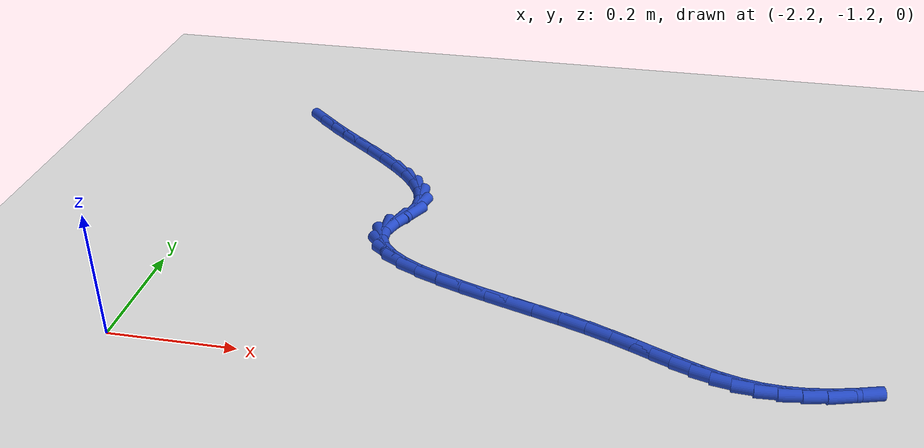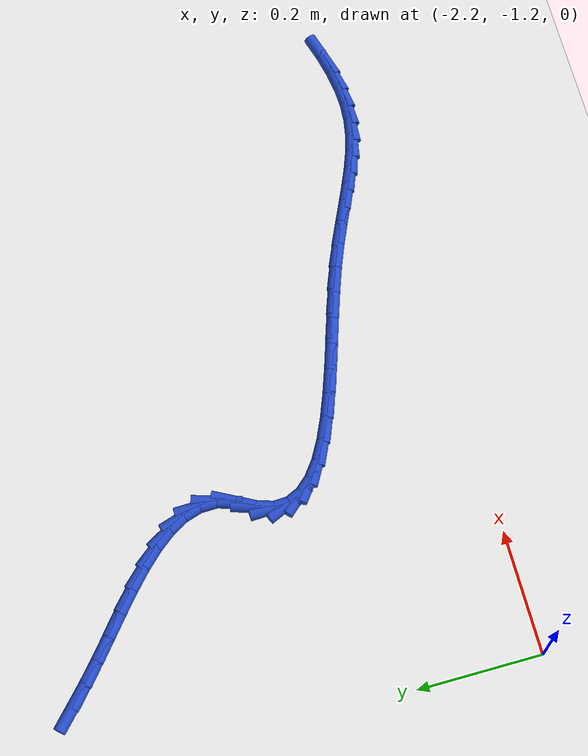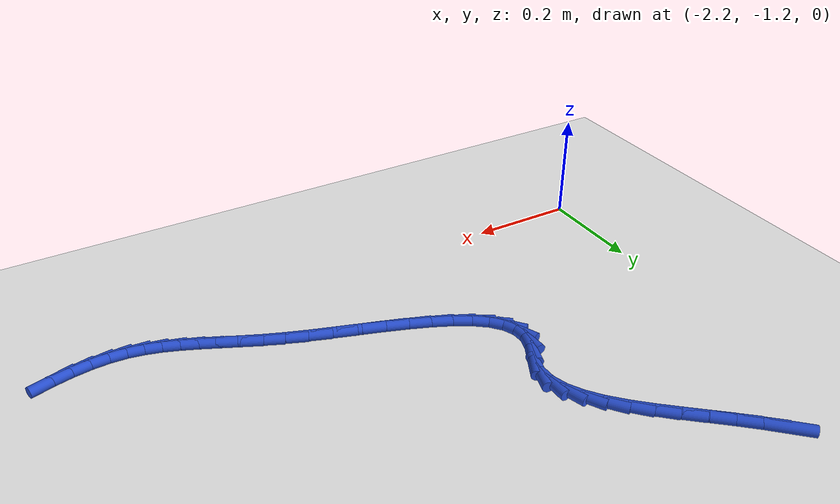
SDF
<sdf version="1.6">
 <world name="default">
  <model name="ground_plane">
   <static>1</static>
   <link name="link">
    <collision name="collision">
     <geometry><plane><normal>0 0 1</normal><size>100 100</size></plane></geometry>
     <surface><friction><ode><mu>100</mu><mu2>50</mu2></ode></friction></surface>
    </collision>
    <visual name="visual">
     <cast_shadows>0</cast_shadows>
     <geometry><plane><normal>0 0 1</normal><size>100 100</size></plane></geometry>
     <material>
      <script><uri>file://media/materials/scripts/gazebo.material</uri><name>Gazebo/WhiteGlow</name></script>
     </material>
    </visual>
   </link>
  </model>
  <model name="line">
   <link name="link_138">
    <pose>-2.0884380524883057 -0.4919055101689259 0.01 0 1.57 -0.749032458241455</pose>
    <collision name="collision">
     <geometry><cylinder><radius>0.01</radius><length>0.08</length></cylinder></geometry>
    </collision>
    <visual name="visual">
     <material>
      <script><name>Gazebo/Blue</name><uri>file://media/materials/scripts/gazebo.material</uri></script>
     </material>
     <geometry><cylinder><radius>0.01</radius><length>0.08</length></cylinder></geometry>
    </visual>
   </link>
   <link name="link_139">
    <pose>-2.060183938381724 -0.5181759267356354 0.01 0 1.57 -0.7186947380564769</pose>
    <collision name="collision">
     <geometry><cylinder><radius>0.01</radius><length>0.08</length></cylinder></geometry>
    </collision>
    <visual name="visual">
     <material>
      <script><name>Gazebo/Blue</name><uri>file://media/materials/scripts/gazebo.material</uri></script>
     </material>
     <geometry><cylinder><radius>0.01</radius><length>0.08</length></cylinder></geometry>
    </visual>
   </link>
   <link name="link_140">
    <pose>-2.0303231373772 -0.544296997066121 0.01 0 1.57 -0.6958291063606986</pose>
    <collision name="collision">
     <geometry><cylinder><radius>0.01</radius><length>0.08</length></cylinder></geometry>
    </collision>
    <visual name="visual">
     <material>
      <script><name>Gazebo/Blue</name><uri>file://media/materials/scripts/gazebo.material</uri></script>
     </material>
     <geometry><cylinder><radius>0.01</radius><length>0.08</length></cylinder></geometry>
    </visual>
   </link>
   <link name="link_141">
    <pose>-1.9992147636751227 -0.570278193353572 0.01 0 1.57 -0.6890456255350569</pose>
    <collision name="collision">
     <geometry><cylinder><radius>0.01</radius><length>0.08</length></cylinder></geometry>
    </collision>
    <visual name="visual">
     <material>
      <script><name>Gazebo/Blue</name><uri>file://media/materials/scripts/gazebo.material</uri></script>
     </material>
     <geometry><cylinder><radius>0.01</radius><length>0.08</length></cylinder></geometry>
    </visual>
   </link>
   <link name="link_142">
    <pose>-1.9677667232148017 -0.5961829786896986 0.01 0 1.57 -0.7026970194635198</pose>
    <collision name="collision">
     <geometry><cylinder><radius>0.01</radius><length>0.08</length></cylinder></geometry>
    </collision>
    <visual name="visual">
     <material>
      <script><name>Gazebo/Blue</name><uri>file://media/materials/scripts/gazebo.material</uri></script>
     </material>
     <geometry><cylinder><radius>0.01</radius><length>0.08</length></cylinder></geometry>
    </visual>
   </link>
   <link name="link_143">
    <pose>-1.9371625552994782 -0.6221019333619064 0.01 0 1.57 -0.7387135296902835</pose>
    <collision name="collision">
     <geometry><cylinder><radius>0.01</radius><length>0.08</length></cylinder></geometry>
    </collision>
    <visual name="visual">
     <material>
      <script><name>Gazebo/Blue</name><uri>file://media/materials/scripts/gazebo.material</uri></script>
     </material>
     <geometry><cylinder><radius>0.01</radius><length>0.08</length></cylinder></geometry>
    </visual>
   </link>
   <link name="link_144">
    <pose>-1.9085878781269554 -0.6481258421821554 0.01 0 1.57 -0.8020715429519271</pose>
    <collision name="collision">
     <geometry><cylinder><radius>0.01</radius><length>0.08</length></cylinder></geometry>
    </collision>
    <visual name="visual">
     <material>
      <script><name>Gazebo/Blue</name><uri>file://media/materials/scripts/gazebo.material</uri></script>
     </material>
     <geometry><cylinder><radius>0.01</radius><length>0.08</length></cylinder></geometry>
    </visual>
   </link>
   <link name="link_145">
    <pose>-1.8832283098950378 -0.674345489962403 0.01 0 1.57 -0.9017423511591292</pose>
    <collision name="collision">
     <geometry><cylinder><radius>0.01</radius><length>0.08</length></cylinder></geometry>
    </collision>
    <visual name="visual">
     <material>
      <script><name>Gazebo/Blue</name><uri>file://media/materials/scripts/gazebo.material</uri></script>
     </material>
     <geometry><cylinder><radius>0.01</radius><length>0.08</length></cylinder></geometry>
    </visual>
   </link>
   <link name="link_146">
    <pose>-1.8622694688015273 -0.7008516615146085 0.01 0 1.57 -1.0513556297999018</pose>
    <collision name="collision">
     <geometry><cylinder><radius>0.01</radius><length>0.08</length></cylinder></geometry>
    </collision>
    <visual name="visual">
     <material>
      <script><name>Gazebo/Blue</name><uri>file://media/materials/scripts/gazebo.material</uri></script>
     </material>
     <geometry><cylinder><radius>0.01</radius><length>0.08</length></cylinder></geometry>
    </visual>
   </link>
   <link name="link_147">
    <pose>-1.8468969730442284 -0.7277351416507315 0.01 0 1.57 -1.26614159209558</pose>
    <collision name="collision">
     <geometry><cylinder><radius>0.01</radius><length>0.08</length></cylinder></geometry>
    </collision>
    <visual name="visual">
     <material>
      <script><name>Gazebo/Blue</name><uri>file://media/materials/scripts/gazebo.material</uri></script>
     </material>
     <geometry><cylinder><radius>0.01</radius><length>0.08</length></cylinder></geometry>
    </visual>
   </link>
   <link name="link_148">
    <pose>-1.8382964408209435 -0.7550867151827315 0.01 0 1.57 -1.547764209544201</pose>
    <collision name="collision">
     <geometry><cylinder><radius>0.01</radius><length>0.08</length></cylinder></geometry>
    </collision>
    <visual name="visual">
     <material>
      <script><name>Gazebo/Blue</name><uri>file://media/materials/scripts/gazebo.material</uri></script>
     </material>
     <geometry><cylinder><radius>0.01</radius><length>0.08</length></cylinder></geometry>
    </visual>
   </link>
   <link name="link_149">
    <pose>-1.8376534903294761 -0.782997166922566 0.01 0 1.57 1.281521107790682</pose>
    <collision name="collision">
     <geometry><cylinder><radius>0.01</radius><length>0.08</length></cylinder></geometry>
    </collision>
    <visual name="visual">
     <material>
      <script><name>Gazebo/Blue</name><uri>file://media/materials/scripts/gazebo.material</uri></script>
     </material>
     <geometry><cylinder><radius>0.01</radius><length>0.08</length></cylinder></geometry>
    </visual>
   </link>
   <link name="link_150">
    <pose>-1.846153651302368 -0.8115572676513877 0.01 0 1.57 1.084146954044997</pose>
    <collision name="collision">
     <geometry><cylinder><radius>0.01</radius><length>0.08</length></cylinder></geometry>
    </collision>
    <visual name="visual">
     <material>
      <script><name>Gazebo/Blue</name><uri>file://media/materials/scripts/gazebo.material</uri></script>
     </material>
     <geometry><cylinder><radius>0.01</radius><length>0.08</length></cylinder></geometry>
    </visual>
   </link>
   <link name="link_151">
    <pose>-1.8613516391243128 -0.8402819321149406 0.01 0 1.57 1.2579596716824297</pose>
    <collision name="collision">
     <geometry><cylinder><radius>0.01</radius><length>0.08</length></cylinder></geometry>
    </collision>
    <visual name="visual">
     <material>
      <script><name>Gazebo/Blue</name><uri>file://media/materials/scripts/gazebo.material</uri></script>
     </material>
     <geometry><cylinder><radius>0.01</radius><length>0.08</length></cylinder></geometry>
    </visual>
   </link>
   <link name="link_152">
    <pose>-1.86999217113579 -0.8669949206093668 0.01 0 1.57 -1.5231700630644514</pose>
    <collision name="collision">
     <geometry><cylinder><radius>0.01</radius><length>0.08</length></cylinder></geometry>
    </collision>
    <visual name="visual">
     <material>
      <script><name>Gazebo/Blue</name><uri>file://media/materials/scripts/gazebo.material</uri></script>
     </material>
     <geometry><cylinder><radius>0.01</radius><length>0.08</length></cylinder></geometry>
    </visual>
   </link>
   <link name="link_153">
    <pose>-1.868836974615395 -0.8912320299016634 0.01 0 1.57 -1.148489193205072</pose>
    <collision name="collision">
     <geometry><cylinder><radius>0.01</radius><length>0.08</length></cylinder></geometry>
    </collision>
    <visual name="visual">
     <material>
      <script><name>Gazebo/Blue</name><uri>file://media/materials/scripts/gazebo.material</uri></script>
     </material>
     <geometry><cylinder><radius>0.01</radius><length>0.08</length></cylinder></geometry>
    </visual>
   </link>
   <link name="link_154">
    <pose>-1.8589429732515905 -0.9132508645341243 0.01 0 1.57 -0.8513453218993634</pose>
    <collision name="collision">
     <geometry><cylinder><radius>0.01</radius><length>0.08</length></cylinder></geometry>
    </collision>
    <visual name="visual">
     <material>
      <script><name>Gazebo/Blue</name><uri>file://media/materials/scripts/gazebo.material</uri></script>
     </material>
     <geometry><cylinder><radius>0.01</radius><length>0.08</length></cylinder></geometry>
    </visual>
   </link>
   <link name="link_155">
    <pose>-1.8413696914225612 -0.9333094660949646 0.01 0 1.57 -0.6490761225392863</pose>
    <collision name="collision">
     <geometry><cylinder><radius>0.01</radius><length>0.08</length></cylinder></geometry>
    </collision>
    <visual name="visual">
     <material>
      <script><name>Gazebo/Blue</name><uri>file://media/materials/scripts/gazebo.material</uri></script>
     </material>
     <geometry><cylinder><radius>0.01</radius><length>0.08</length></cylinder></geometry>
    </visual>
   </link>
   <link name="link_156">
    <pose>-1.8171766535064944 -0.9516658761723993 0.01 0 1.57 -0.5168728040107521</pose>
    <collision name="collision">
     <geometry><cylinder><radius>0.01</radius><length>0.08</length></cylinder></geometry>
    </collision>
    <visual name="visual">
     <material>
      <script><name>Gazebo/Blue</name><uri>file://media/materials/scripts/gazebo.material</uri></script>
     </material>
     <geometry><cylinder><radius>0.01</radius><length>0.08</length></cylinder></geometry>
    </visual>
   </link>
   <link name="link_157">
    <pose>-1.787423383881574 -0.9685781363546432 0.01 0 1.57 -0.43039930971054374</pose>
    <collision name="collision">
     <geometry><cylinder><radius>0.01</radius><length>0.08</length></cylinder></geometry>
    </collision>
    <visual name="visual">
     <material>
      <script><name>Gazebo/Blue</name><uri>file://media/materials/scripts/gazebo.material</uri></script>
     </material>
     <geometry><cylinder><radius>0.01</radius><length>0.08</length></cylinder></geometry>
    </visual>
   </link>
   <link name="link_158">
    <pose>-1.7531694069259884 -0.9843042882299101 0.01 0 1.57 -0.3740870523102001</pose>
    <collision name="collision">
     <geometry><cylinder><radius>0.01</radius><length>0.08</length></cylinder></geometry>
    </collision>
    <visual name="visual">
     <material>
      <script><name>Gazebo/Blue</name><uri>file://media/materials/scripts/gazebo.material</uri></script>
     </material>
     <geometry><cylinder><radius>0.01</radius><length>0.08</length></cylinder></geometry>
    </visual>
   </link>
   <link name="link_159">
    <pose>-1.7154742470179223 -0.9991023733864149 0.01 0 1.57 -0.33892203623546835</pose>
    <collision name="collision">
     <geometry><cylinder><radius>0.01</radius><length>0.08</length></cylinder></geometry>
    </collision>
    <visual name="visual">
     <material>
      <script><name>Gazebo/Blue</name><uri>file://media/materials/scripts/gazebo.material</uri></script>
     </material>
     <geometry><cylinder><radius>0.01</radius><length>0.08</length></cylinder></geometry>
    </visual>
   </link>
   <link name="link_160">
    <pose>-1.675397428535562 -1.0132304334123725 0.01 0 1.57 -0.31993257443522605</pose>
    <collision name="collision">
     <geometry><cylinder><radius>0.01</radius><length>0.08</length></cylinder></geometry>
    </collision>
    <visual name="visual">
     <material>
      <script><name>Gazebo/Blue</name><uri>file://media/materials/scripts/gazebo.material</uri></script>
     </material>
     <geometry><cylinder><radius>0.01</radius><length>0.08</length></cylinder></geometry>
    </visual>
   </link>
   <link name="link_161">
    <pose>-1.6339984758570933 -1.0269465098959976 0.01 0 1.57 -0.3147121915460534</pose>
    <collision name="collision">
     <geometry><cylinder><radius>0.01</radius><length>0.08</length></cylinder></geometry>
    </collision>
    <visual name="visual">
     <material>
      <script><name>Gazebo/Blue</name><uri>file://media/materials/scripts/gazebo.material</uri></script>
     </material>
     <geometry><cylinder><radius>0.01</radius><length>0.08</length></cylinder></geometry>
    </visual>
   </link>
   <link name="link_162">
    <pose>-1.5923369133607013 -1.040508644425505 0.01 0 1.57 -0.3227343672275653</pose>
    <collision name="collision">
     <geometry><cylinder><radius>0.01</radius><length>0.08</length></cylinder></geometry>
    </collision>
    <visual name="visual">
     <material>
      <script><name>Gazebo/Blue</name><uri>file://media/materials/scripts/gazebo.material</uri></script>
     </material>
     <geometry><cylinder><radius>0.01</radius><length>0.08</length></cylinder></geometry>
    </visual>
   </link>
   <link name="link_163">
    <pose>-1.5514722654245738 -1.0541748785891083 0.01 0 1.57 -0.34522465969648</pose>
    <collision name="collision">
     <geometry><cylinder><radius>0.01</radius><length>0.08</length></cylinder></geometry>
    </collision>
    <visual name="visual">
     <material>
      <script><name>Gazebo/Blue</name><uri>file://media/materials/scripts/gazebo.material</uri></script>
     </material>
     <geometry><cylinder><radius>0.01</radius><length>0.08</length></cylinder></geometry>
    </visual>
   </link>
   <link name="link_164">
    <pose>-1.5124640564268956 -1.068203253975023 0.01 0 1.57 -0.3823264893664484</pose>
    <collision name="collision">
     <geometry><cylinder><radius>0.01</radius><length>0.08</length></cylinder></geometry>
    </collision>
    <visual name="visual">
     <material>
      <script><name>Gazebo/Blue</name><uri>file://media/materials/scripts/gazebo.material</uri></script>
     </material>
     <geometry><cylinder><radius>0.01</radius><length>0.08</length></cylinder></geometry>
    </visual>
   </link>
   <link name="link_165">
    <pose>-1.4762204602158808 -1.082777270496012 0.01 0 1.57 -0.415177323829087</pose>
    <collision name="collision">
     <geometry><cylinder><radius>0.01</radius><length>0.08</length></cylinder></geometry>
    </collision>
    <visual name="visual">
     <material>
      <script><name>Gazebo/Blue</name><uri>file://media/materials/scripts/gazebo.material</uri></script>
     </material>
     <geometry><cylinder><radius>0.01</radius><length>0.08</length></cylinder></geometry>
    </visual>
   </link>
   <link name="link_166">
    <pose>-1.4426361307341464 -1.0975812592024625 0.01 0 1.57 -0.43239485819746204</pose>
    <collision name="collision">
     <geometry><cylinder><radius>0.01</radius><length>0.08</length></cylinder></geometry>
    </collision>
    <visual name="visual">
     <material>
      <script><name>Gazebo/Blue</name><uri>file://media/materials/scripts/gazebo.material</uri></script>
     </material>
     <geometry><cylinder><radius>0.01</radius><length>0.08</length></cylinder></geometry>
    </visual>
   </link>
   <link name="link_167">
    <pose>-1.4111895402755097 -1.112094577449594 0.01 0 1.57 -0.430552559595404</pose>
    <collision name="collision">
     <geometry><cylinder><radius>0.01</radius><length>0.08</length></cylinder></geometry>
    </collision>
    <visual name="visual">
     <material>
      <script><name>Gazebo/Blue</name><uri>file://media/materials/scripts/gazebo.material</uri></script>
     </material>
     <geometry><cylinder><radius>0.01</radius><length>0.08</length></cylinder></geometry>
    </visual>
   </link>
   <link name="link_168">
    <pose>-1.3813578887311884 -1.1257959559214061 0.01 0 1.57 -0.4063969294973757</pose>
    <collision name="collision">
     <geometry><cylinder><radius>0.01</radius><length>0.08</length></cylinder></geometry>
    </collision>
    <visual name="visual">
     <material>
      <script><name>Gazebo/Blue</name><uri>file://media/materials/scripts/gazebo.material</uri></script>
     </material>
     <geometry><cylinder><radius>0.01</radius><length>0.08</length></cylinder></geometry>
    </visual>
   </link>
   <link name="link_169">
    <pose>-1.3526183759924006 -1.1381641253018968 0.01 0 1.57 -0.3572097899002563</pose>
    <collision name="collision">
     <geometry><cylinder><radius>0.01</radius><length>0.08</length></cylinder></geometry>
    </collision>
    <visual name="visual">
     <material>
      <script><name>Gazebo/Blue</name><uri>file://media/materials/scripts/gazebo.material</uri></script>
     </material>
     <geometry><cylinder><radius>0.01</radius><length>0.08</length></cylinder></geometry>
    </visual>
   </link>
   <link name="link_170">
    <pose>-1.3244482019503638 -1.148677816275066 0.01 0 1.57 -0.2816698599199416</pose>
    <collision name="collision">
     <geometry><cylinder><radius>0.01</radius><length>0.08</length></cylinder></geometry>
    </collision>
    <visual name="visual">
     <material>
      <script><name>Gazebo/Blue</name><uri>file://media/materials/scripts/gazebo.material</uri></script>
     </material>
     <geometry><cylinder><radius>0.01</radius><length>0.08</length></cylinder></geometry>
    </visual>
   </link>
   <link name="link_171">
    <pose>-1.2963245664962972 -1.1568157595249118 0.01 0 1.57 -0.18123898361624421</pose>
    <collision name="collision">
     <geometry><cylinder><radius>0.01</radius><length>0.08</length></cylinder></geometry>
    </collision>
    <visual name="visual">
     <material>
      <script><name>Gazebo/Blue</name><uri>file://media/materials/scripts/gazebo.material</uri></script>
     </material>
     <geometry><cylinder><radius>0.01</radius><length>0.08</length></cylinder></geometry>
    </visual>
   </link>
   <link name="link_172">
    <pose>-1.267724669521419 -1.1620566857354333 0.01 0 1.57 -0.062167206907947636</pose>
    <collision name="collision">
     <geometry><cylinder><radius>0.01</radius><length>0.08</length></cylinder></geometry>
    </collision>
    <visual name="visual">
     <material>
      <script><name>Gazebo/Blue</name><uri>file://media/materials/scripts/gazebo.material</uri></script>
     </material>
     <geometry><cylinder><radius>0.01</radius><length>0.08</length></cylinder></geometry>
    </visual>
   </link>
   <link name="link_173">
    <pose>-1.2381423212088112 -1.1638981105378672 0.01 0 1.57 0.05250303405426699</pose>
    <collision name="collision">
     <geometry><cylinder><radius>0.01</radius><length>0.08</length></cylinder></geometry>
    </collision>
    <visual name="visual">
     <material>
      <script><name>Gazebo/Blue</name><uri>file://media/materials/scripts/gazebo.material</uri></script>
     </material>
     <geometry><cylinder><radius>0.01</radius><length>0.08</length></cylinder></geometry>
    </visual>
   </link>
   <link name="link_174">
    <pose>-1.2074679848576935 -1.1622861333643515 0.01 0 1.57 0.1470459612183052</pose>
    <collision name="collision">
     <geometry><cylinder><radius>0.01</radius><length>0.08</length></cylinder></geometry>
    </collision>
    <visual name="visual">
     <material>
      <script><name>Gazebo/Blue</name><uri>file://media/materials/scripts/gazebo.material</uri></script>
     </material>
     <geometry><cylinder><radius>0.01</radius><length>0.08</length></cylinder></geometry>
    </visual>
   </link>
   <link name="link_175">
    <pose>-1.175997071154687 -1.1576248176231425 0.01 0 1.57 0.22418175135214993</pose>
    <collision name="collision">
     <geometry><cylinder><radius>0.01</radius><length>0.08</length></cylinder></geometry>
    </collision>
    <visual name="visual">
     <material>
      <script><name>Gazebo/Blue</name><uri>file://media/materials/scripts/gazebo.material</uri></script>
     </material>
     <geometry><cylinder><radius>0.01</radius><length>0.08</length></cylinder></geometry>
    </visual>
   </link>
   <link name="link_176">
    <pose>-1.144043260155254 -1.150338887956657 0.01 0 1.57 0.28713612304376107</pose>
    <collision name="collision">
     <geometry><cylinder><radius>0.01</radius><length>0.08</length></cylinder></geometry>
    </collision>
    <visual name="visual">
     <material>
      <script><name>Gazebo/Blue</name><uri>file://media/materials/scripts/gazebo.material</uri></script>
     </material>
     <geometry><cylinder><radius>0.01</radius><length>0.08</length></cylinder></geometry>
    </visual>
   </link>
  </model>
 </world>
</sdf>
